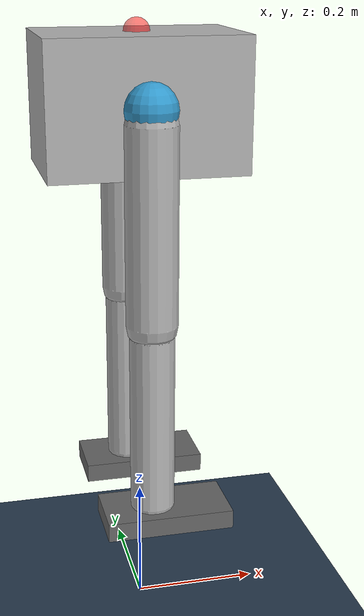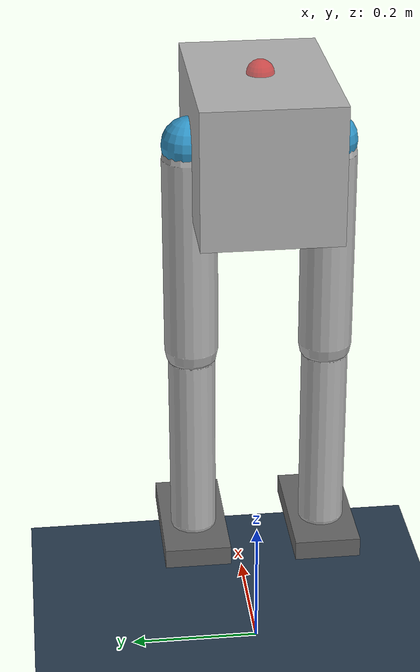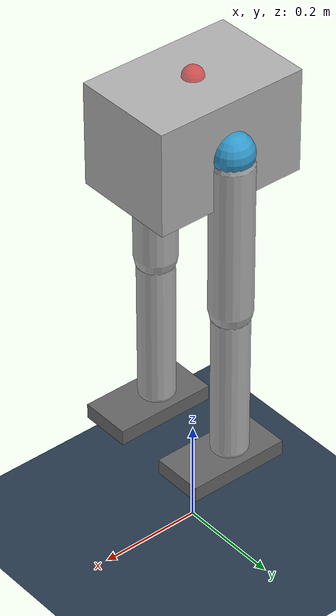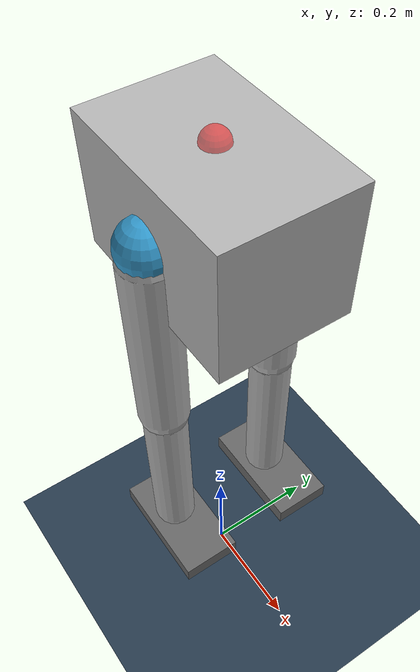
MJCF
<mujoco model="forward_knee_biped">

  <compiler angle="degree" inertiafromgeom="true"/>

  <option timestep="0.002" integrator="RK4" gravity="0 0 -9.81">
    <flag warmstart="enable"/>
  </option>

  <default>
    <joint limited="true" damping="0.5" armature="0.01"/>
    <geom contype="1" conaffinity="1" condim="3" friction="1.0 0.005 0.0001"
          density="1000" margin="0.001"/>
    <motor ctrllimited="true" ctrlrange="-1 1"/>
  </default>

  <asset>
    <texture type="skybox" builtin="gradient" rgb1="0.3 0.5 0.7" rgb2="0 0 0" width="512" height="3072"/>
    <texture type="2d" name="groundplane" builtin="checker" mark="edge"
             rgb1="0.2 0.3 0.4" rgb2="0.1 0.15 0.2" markrgb="0.8 0.8 0.8"
             width="300" height="300"/>
    <material name="groundplane" texture="groundplane" texrepeat="5 5" texuniform="true" reflectance="0.2"/>
    <material name="body_mat" rgba="0.7 0.7 0.7 1"/>
    <material name="joint_mat" rgba="0.2 0.6 0.8 1"/>
    <material name="foot_mat" rgba="0.4 0.4 0.4 1"/>
  </asset>

  <worldbody>
    <light directional="true" diffuse="0.6 0.6 0.6" specular="0.2 0.2 0.2" pos="0 0 4" dir="0 0 -1"/>
    <geom name="floor" type="plane" size="50 50 0.1" material="groundplane"/>

    <!-- ======== TORSO (payload platform) ======== -->
    <body name="torso" pos="0 0 0.85">
      <freejoint name="root"/>
      <geom name="torso_geom" type="box" size="0.15 0.1 0.1" mass="10.0" material="body_mat"/>

      <!-- IMU sensor site -->
      <site name="imu_site" pos="0 0 0" size="0.01"/>

      <!-- Payload mount point -->
      <site name="payload_mount" pos="0 0 0.1" size="0.02" rgba="1 0 0 0.5"/>

      <!-- ======== RIGHT LEG ======== -->
      <body name="r_hip_yaw_link" pos="0 -0.1 0">
        <joint name="r_hip_yaw" type="hinge" axis="0 0 1" range="-45 45"
               damping="2.0" stiffness="0"/>
        <geom type="sphere" size="0.04" material="joint_mat"/>

        <body name="r_hip_roll_link" pos="0 0 0">
          <joint name="r_hip_roll" type="hinge" axis="1 0 0" range="-30 30"
                 damping="2.0"/>
          <geom type="sphere" size="0.035" material="joint_mat"/>

          <body name="r_hip_pitch_link" pos="0 0 0">
            <joint name="r_hip_pitch" type="hinge" axis="0 1 0" range="-60 60"
                   damping="2.0"/>
            <geom type="sphere" size="0.035" material="joint_mat"/>

            <!-- Upper leg (thigh) -->
            <body name="r_thigh" pos="0 0 -0.02">
              <geom name="r_thigh_geom" type="capsule" fromto="0 0 0 0 0 -0.3"
                    size="0.04" mass="3.0" material="body_mat"/>

              <!-- KNEE: Forward bending (conventional) -->
              <body name="r_knee_link" pos="0 0 -0.3">
                <joint name="r_knee" type="hinge" axis="0 1 0" range="0 120"
                       damping="1.5"/>
                <geom type="sphere" size="0.035" material="joint_mat"/>

                <!-- Lower leg (shin) -->
                <body name="r_shin" pos="0 0 -0.02">
                  <geom name="r_shin_geom" type="capsule" fromto="0 0 0 0 0 -0.28"
                        size="0.035" mass="2.0" material="body_mat"/>

                  <!-- ANKLE -->
                  <body name="r_ankle_link" pos="0 0 -0.28">
                    <joint name="r_ankle_pitch" type="hinge" axis="0 1 0" range="-30 45"
                           damping="1.0"/>
                    <geom type="sphere" size="0.03" material="joint_mat"/>

                    <body name="r_ankle_roll_link" pos="0 0 0">
                      <joint name="r_ankle_roll" type="hinge" axis="1 0 0" range="-20 20"
                             damping="1.0"/>

                      <!-- Foot -->
                      <body name="r_foot" pos="0 0 -0.02">
                        <geom name="r_foot_geom" type="box" size="0.1 0.05 0.015"
                              pos="0.02 0 0" mass="0.5" material="foot_mat"/>
                        <!-- Contact sensors -->
                        <site name="r_heel" pos="-0.06 0 -0.015" size="0.01"/>
                        <site name="r_toe" pos="0.08 0 -0.015" size="0.01"/>
                      </body>
                    </body>
                  </body>
                </body>
              </body>
            </body>
          </body>
        </body>
      </body>

      <!-- ======== LEFT LEG (mirror of right) ======== -->
      <body name="l_hip_yaw_link" pos="0 0.1 0">
        <joint name="l_hip_yaw" type="hinge" axis="0 0 1" range="-45 45"
               damping="2.0"/>
        <geom type="sphere" size="0.04" material="joint_mat"/>

        <body name="l_hip_roll_link" pos="0 0 0">
          <joint name="l_hip_roll" type="hinge" axis="1 0 0" range="-30 30"
                 damping="2.0"/>
          <geom type="sphere" size="0.035" material="joint_mat"/>

          <body name="l_hip_pitch_link" pos="0 0 0">
            <joint name="l_hip_pitch" type="hinge" axis="0 1 0" range="-60 60"
                   damping="2.0"/>
            <geom type="sphere" size="0.035" material="joint_mat"/>

            <body name="l_thigh" pos="0 0 -0.02">
              <geom name="l_thigh_geom" type="capsule" fromto="0 0 0 0 0 -0.3"
                    size="0.04" mass="3.0" material="body_mat"/>

              <body name="l_knee_link" pos="0 0 -0.3">
                <joint name="l_knee" type="hinge" axis="0 1 0" range="0 120"
                       damping="1.5"/>
                <geom type="sphere" size="0.035" material="joint_mat"/>

                <body name="l_shin" pos="0 0 -0.02">
                  <geom name="l_shin_geom" type="capsule" fromto="0 0 0 0 0 -0.28"
                        size="0.035" mass="2.0" material="body_mat"/>

                  <body name="l_ankle_link" pos="0 0 -0.28">
                    <joint name="l_ankle_pitch" type="hinge" axis="0 1 0" range="-30 45"
                           damping="1.0"/>
                    <geom type="sphere" size="0.03" material="joint_mat"/>

                    <body name="l_ankle_roll_link" pos="0 0 0">
                      <joint name="l_ankle_roll" type="hinge" axis="1 0 0" range="-20 20"
                             damping="1.0"/>

                      <body name="l_foot" pos="0 0 -0.02">
                        <geom name="l_foot_geom" type="box" size="0.1 0.05 0.015"
                              pos="0.02 0 0" mass="0.5" material="foot_mat"/>
                        <site name="l_heel" pos="-0.06 0 -0.015" size="0.01"/>
                        <site name="l_toe" pos="0.08 0 -0.015" size="0.01"/>
                      </body>
                    </body>
                  </body>
                </body>
              </body>
            </body>
          </body>
        </body>
      </body>
    </body>
  </worldbody>

  <!-- ======== ACTUATORS (12 total: 6 per leg) ======== -->
  <actuator>
    <!-- Right leg -->
    <motor name="r_hip_yaw_act"   joint="r_hip_yaw"      gear="80"  ctrlrange="-1 1"/>
    <motor name="r_hip_roll_act"  joint="r_hip_roll"     gear="80"  ctrlrange="-1 1"/>
    <motor name="r_hip_pitch_act" joint="r_hip_pitch"    gear="120" ctrlrange="-1 1"/>
    <motor name="r_knee_act"      joint="r_knee"         gear="120" ctrlrange="-1 1"/>
    <motor name="r_ankle_pitch_act" joint="r_ankle_pitch" gear="60" ctrlrange="-1 1"/>
    <motor name="r_ankle_roll_act"  joint="r_ankle_roll"  gear="40" ctrlrange="-1 1"/>
    <!-- Left leg -->
    <motor name="l_hip_yaw_act"   joint="l_hip_yaw"      gear="80"  ctrlrange="-1 1"/>
    <motor name="l_hip_roll_act"  joint="l_hip_roll"     gear="80"  ctrlrange="-1 1"/>
    <motor name="l_hip_pitch_act" joint="l_hip_pitch"    gear="120" ctrlrange="-1 1"/>
    <motor name="l_knee_act"      joint="l_knee"         gear="120" ctrlrange="-1 1"/>
    <motor name="l_ankle_pitch_act" joint="l_ankle_pitch" gear="60" ctrlrange="-1 1"/>
    <motor name="l_ankle_roll_act"  joint="l_ankle_roll"  gear="40" ctrlrange="-1 1"/>
  </actuator>

  <!-- ======== SENSORS ======== -->
  <sensor>
    <accelerometer name="imu_acc" site="imu_site"/>
    <gyro name="imu_gyro" site="imu_site"/>
    <framequat name="torso_quat" objtype="site" objname="imu_site"/>
    <touch name="r_heel_touch" site="r_heel"/>
    <touch name="r_toe_touch" site="r_toe"/>
    <touch name="l_heel_touch" site="l_heel"/>
    <touch name="l_toe_touch" site="l_toe"/>
  </sensor>
</mujoco>
